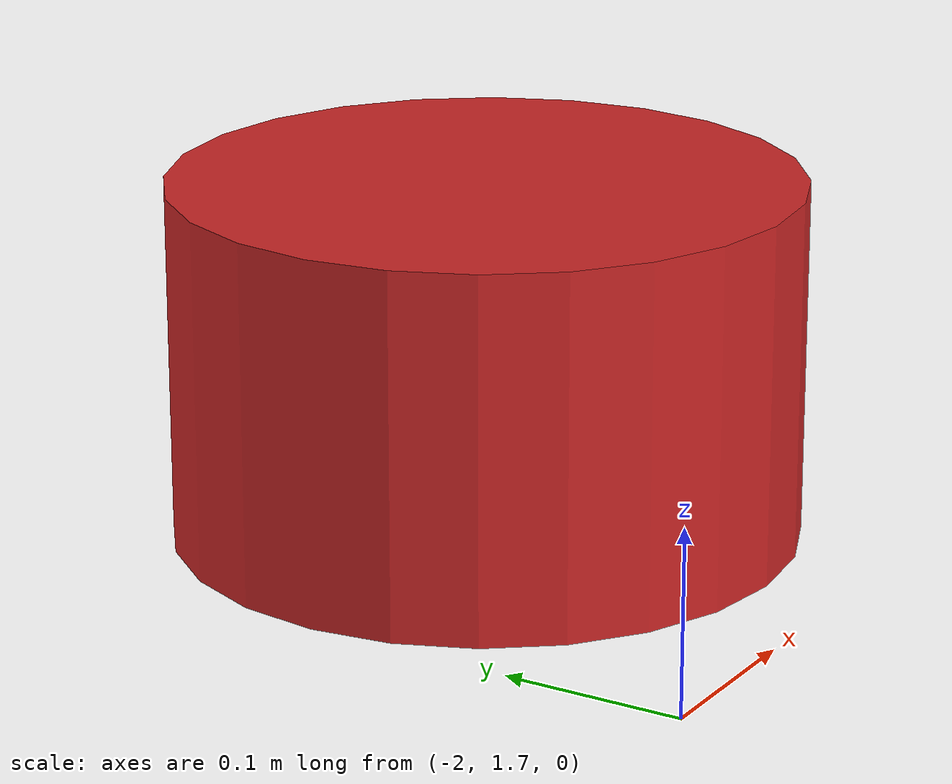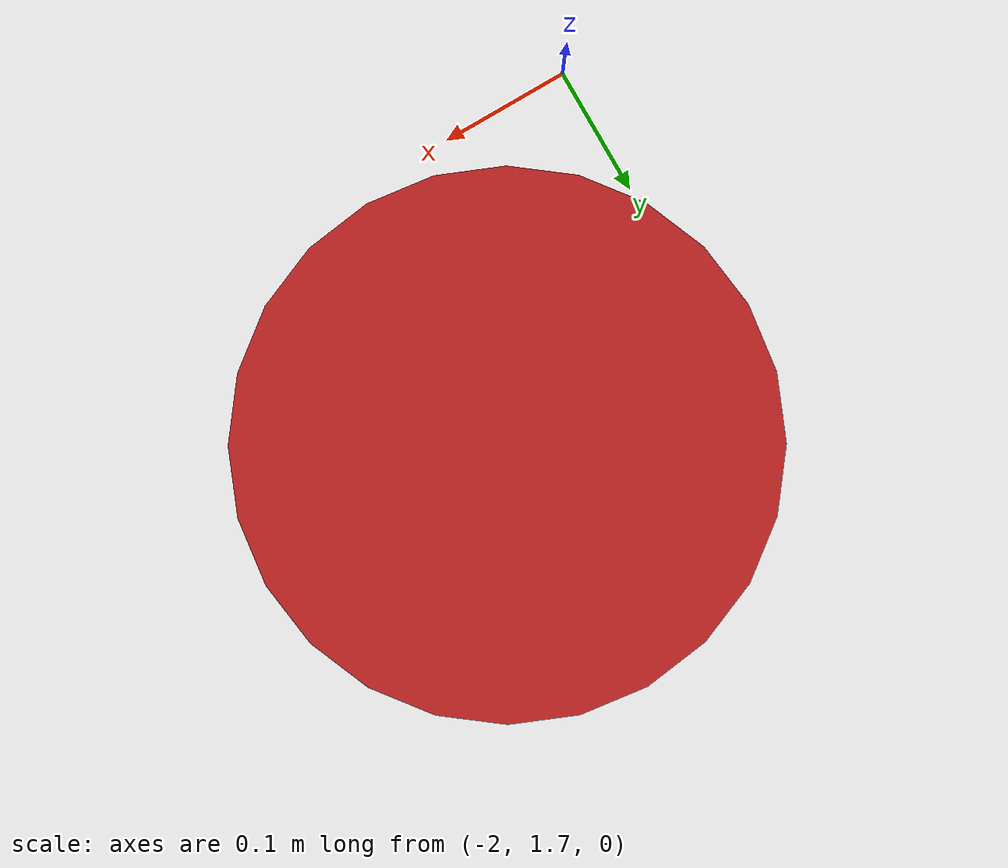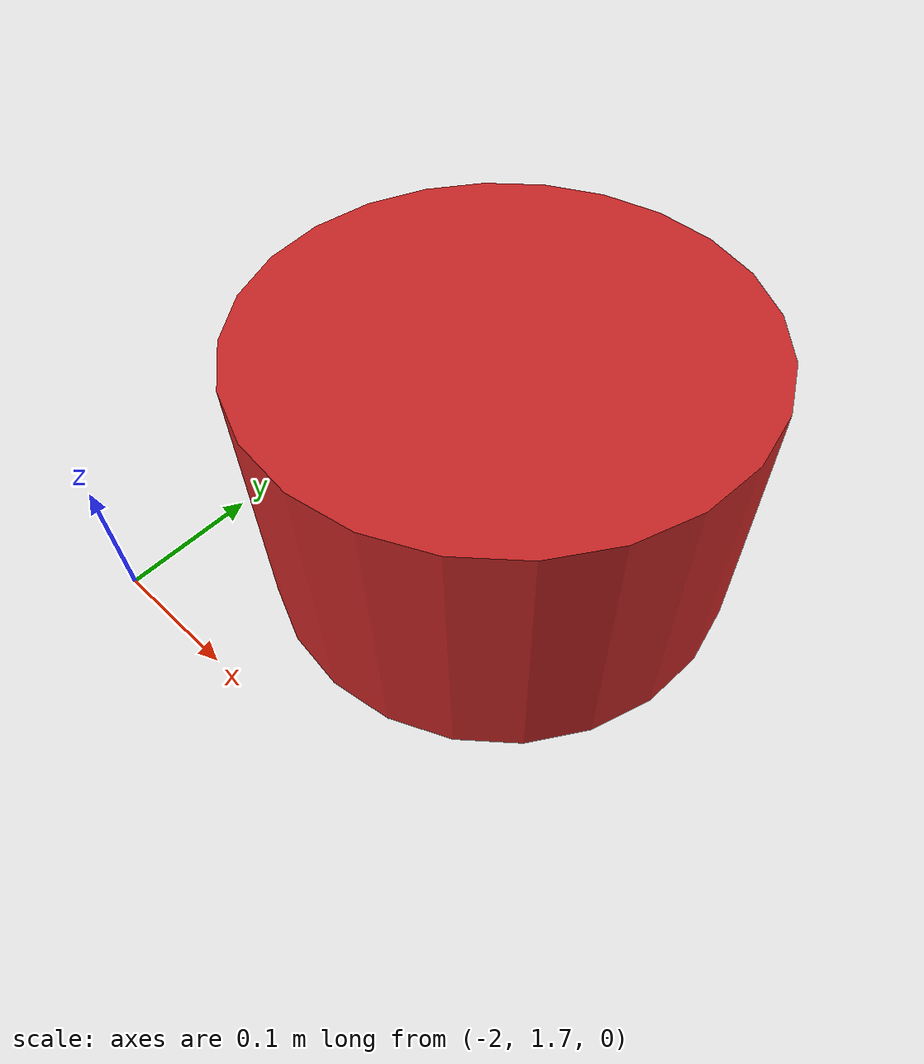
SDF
<sdf version='1.6'>
  <model name='cylinder3'>
    <pose frame=''>-1.826145 1.916873 0.099999 0 -0 0</pose>
    <link name='link'>
      <inertial>
        <mass>0.269</mass>
        <inertia>
          <ixx>0.1</ixx>
          <ixy>0</ixy>
          <ixz>0</ixz>
          <iyy>0.1</iyy>
          <iyz>0</iyz>
          <izz>0.1</izz>
        </inertia>
        <pose frame=''>0 0 0 0 -0 0</pose>
      </inertial>
      <collision name='collision'>
        <geometry>
          <cylinder>
            <radius>0.175</radius>
            <length>0.2</length>
          </cylinder>
        </geometry>
        <max_contacts>10</max_contacts>
        <surface>
          <contact>
            <ode/>
          </contact>
          <bounce/>
          <friction>
            <torsional>
              <ode/>
            </torsional>
            <ode/>
          </friction>
        </surface>
      </collision>
      <visual name='visual'>
        <geometry>
          <cylinder>
            <radius>0.175</radius>
            <length>0.2</length>
          </cylinder>
        </geometry>
        <material>
          <script>
            <name>Gazebo/Red</name>
            <uri>file://media/materials/scripts/gazebo.material</uri>
          </script>
        </material>
      </visual>
      <self_collide>1</self_collide>
      <enable_wind>0</enable_wind>
      <kinematic>0</kinematic>
    </link>
  </model>
</sdf>
